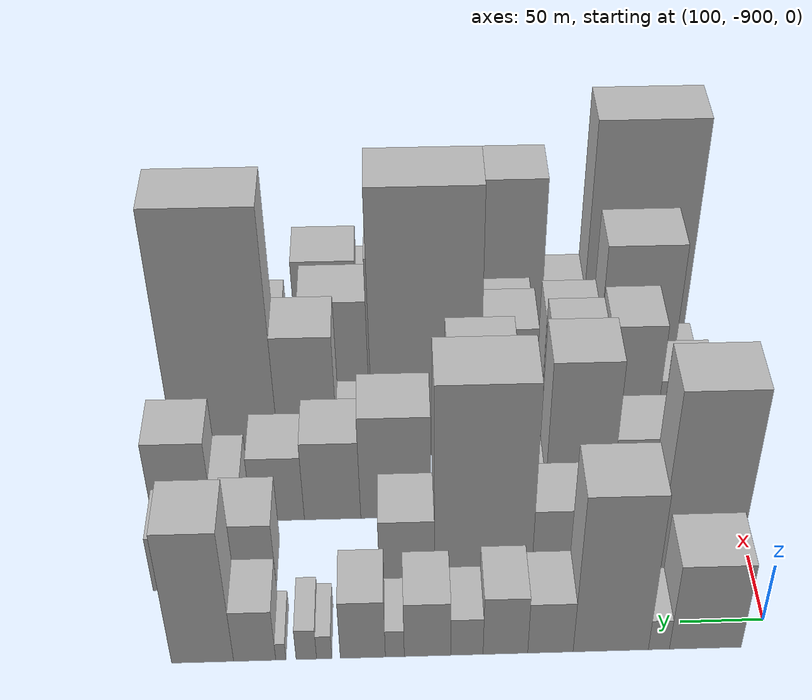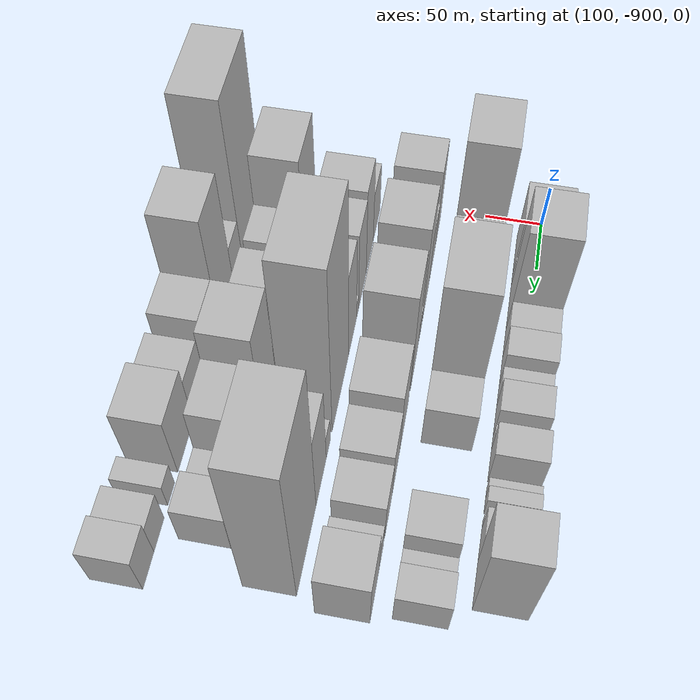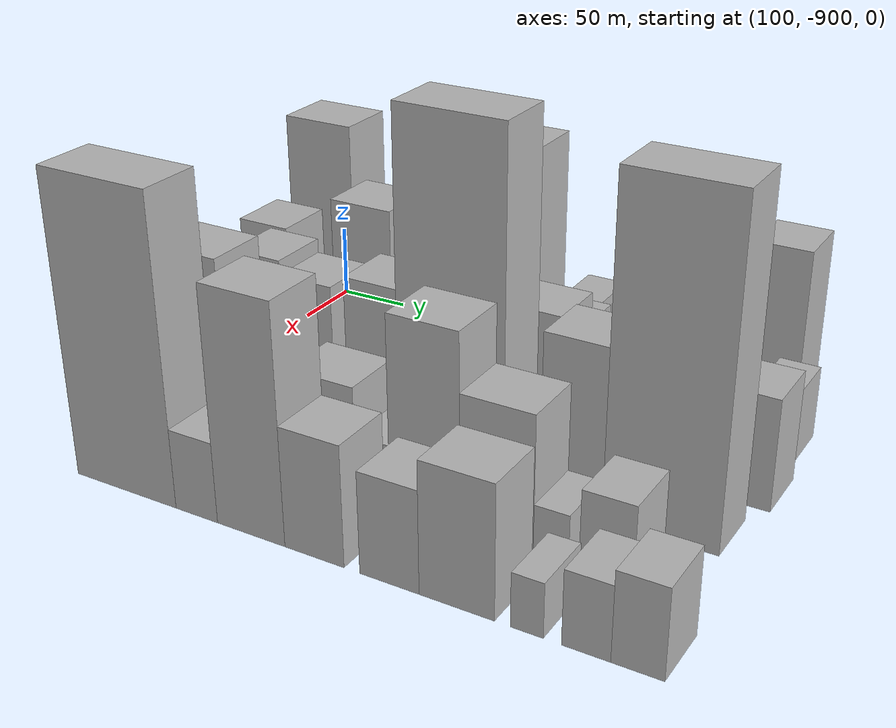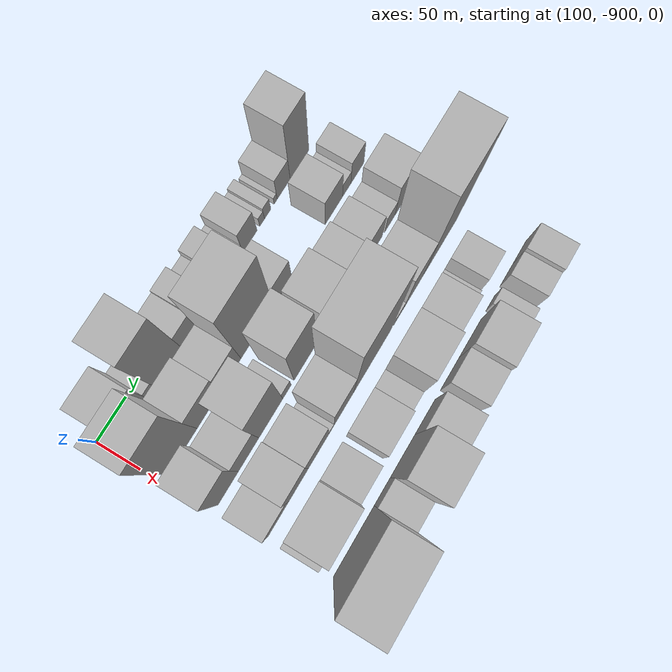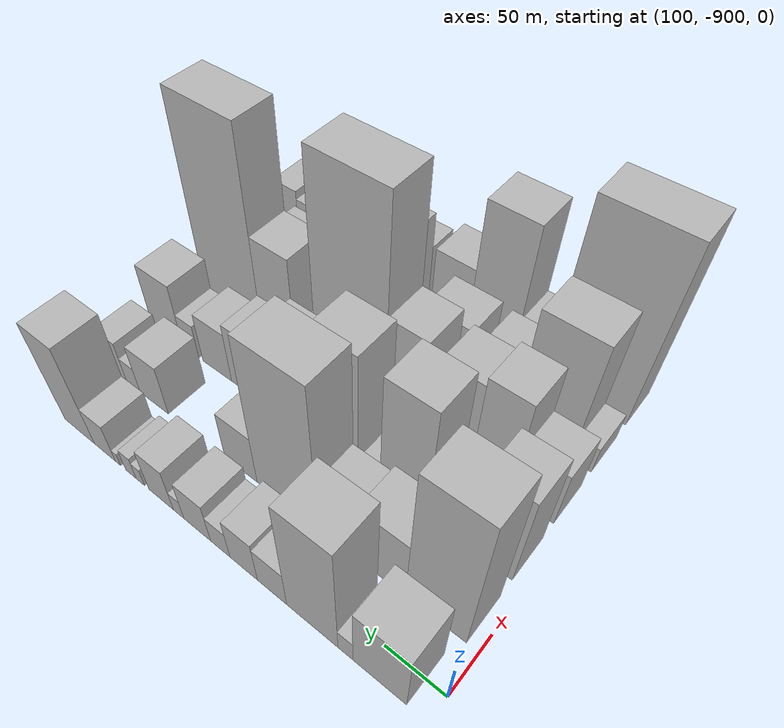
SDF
<sdf version="1.6">
 <world name="default">
  <model name="building_1">
   <static>1</static>
   <pose>100.0000 -861.5015 0 0.000000 0.000000 0.000000</pose>
   <link name="link">
    <pose>0 0 37.50 0 0 0</pose>
    <collision name="collision"><geometry><box><size>40.0000 42.9970 75.0000</size></box></geometry></collision>
    <visual name="visual">
     <cast_shadows>0</cast_shadows>
     <geometry><box><size>40.0000 42.9970 75.0000</size></box></geometry>
     <material>
      <script>
       <uri>model://HANNAS_wall/materials/scripts</uri>
       <uri>model://HANNAS_wall/materials/textures</uri>
       <name>vrc/HANNAS_wall</name>
      </script>
     </material>
    </visual>
   </link>
  </model>
  <model name="building_2">
   <static>1</static>
   <pose>100.0000 -833.7153 0 0.000000 0.000000 0.000000</pose>
   <link name="link">
    <pose>0 0 13.50 0 0 0</pose>
    <collision name="collision"><geometry><box><size>40.0000 12.5755 27.0000</size></box></geometry></collision>
    <visual name="visual">
     <cast_shadows>0</cast_shadows>
     <geometry><box><size>40.0000 12.5755 27.0000</size></box></geometry>
     <material>
      <script>
       <uri>model://HANNAS_wall/materials/scripts</uri>
       <uri>model://HANNAS_wall/materials/textures</uri>
       <name>vrc/HANNAS_wall</name>
      </script>
     </material>
    </visual>
   </link>
  </model>
  <model name="building_3">
   <static>1</static>
   <pose>100.0000 -804.9748 0 0.000000 0.000000 0.000000</pose>
   <link name="link">
    <pose>0 0 67.50 0 0 0</pose>
    <collision name="collision"><geometry><box><size>40.0000 44.9055 135.0000</size></box></geometry></collision>
    <visual name="visual">
     <cast_shadows>0</cast_shadows>
     <geometry><box><size>40.0000 44.9055 135.0000</size></box></geometry>
     <material>
      <script>
       <uri>model://HANNAS_wall/materials/scripts</uri>
       <uri>model://HANNAS_wall/materials/textures</uri>
       <name>vrc/HANNAS_wall</name>
      </script>
     </material>
    </visual>
   </link>
  </model>
  <model name="building_4">
   <static>1</static>
   <pose>100.0000 -769.0350 0 0.000000 0.000000 0.000000</pose>
   <link name="link">
    <pose>0 0 22.50 0 0 0</pose>
    <collision name="collision"><geometry><box><size>40.0000 26.9741 45.0000</size></box></geometry></collision>
    <visual name="visual">
     <cast_shadows>0</cast_shadows>
     <geometry><box><size>40.0000 26.9741 45.0000</size></box></geometry>
     <material>
      <script>
       <uri>model://HANNAS_wall/materials/scripts</uri>
       <uri>model://HANNAS_wall/materials/textures</uri>
       <name>vrc/HANNAS_wall</name>
      </script>
     </material>
    </visual>
   </link>
  </model>
  <model name="building_5">
   <static>1</static>
   <pose>100.0000 -742.2721 0 0.000000 0.000000 0.000000</pose>
   <link name="link">
    <pose>0 0 25.50 0 0 0</pose>
    <collision name="collision"><geometry><box><size>40.0000 26.5517 51.0000</size></box></geometry></collision>
    <visual name="visual">
     <cast_shadows>0</cast_shadows>
     <geometry><box><size>40.0000 26.5517 51.0000</size></box></geometry>
     <material>
      <script>
       <uri>model://HANNAS_wall/materials/scripts</uri>
       <uri>model://HANNAS_wall/materials/textures</uri>
       <name>vrc/HANNAS_wall</name>
      </script>
     </material>
    </visual>
   </link>
  </model>
  <model name="building_6">
   <static>1</static>
   <pose>100.0000 -719.4111 0 0.000000 0.000000 0.000000</pose>
   <link name="link">
    <pose>0 0 16.50 0 0 0</pose>
    <collision name="collision"><geometry><box><size>40.0000 19.1703 33.0000</size></box></geometry></collision>
    <visual name="visual">
     <cast_shadows>0</cast_shadows>
     <geometry><box><size>40.0000 19.1703 33.0000</size></box></geometry>
     <material>
      <script>
       <uri>model://HANNAS_wall/materials/scripts</uri>
       <uri>model://HANNAS_wall/materials/textures</uri>
       <name>vrc/HANNAS_wall</name>
      </script>
     </material>
    </visual>
   </link>
  </model>
  <model name="building_7">
   <static>1</static>
   <pose>100.0000 -696.0575 0 0.000000 0.000000 0.000000</pose>
   <link name="link">
    <pose>0 0 24.00 0 0 0</pose>
    <collision name="collision"><geometry><box><size>40.0000 27.5370 48.0000</size></box></geometry></collision>
    <visual name="visual">
     <cast_shadows>0</cast_shadows>
     <geometry><box><size>40.0000 27.5370 48.0000</size></box></geometry>
     <material>
      <script>
       <uri>model://HANNAS_wall/materials/scripts</uri>
       <uri>model://HANNAS_wall/materials/textures</uri>
       <name>vrc/HANNAS_wall</name>
      </script>
     </material>
    </visual>
   </link>
  </model>
  <model name="building_8">
   <static>1</static>
   <pose>100.0000 -676.7047 0 0.000000 0.000000 0.000000</pose>
   <link name="link">
    <pose>0 0 12.00 0 0 0</pose>
    <collision name="collision"><geometry><box><size>40.0000 11.1686 24.0000</size></box></geometry></collision>
    <visual name="visual">
     <cast_shadows>0</cast_shadows>
     <geometry><box><size>40.0000 11.1686 24.0000</size></box></geometry>
     <material>
      <script>
       <uri>model://HANNAS_wall/materials/scripts</uri>
       <uri>model://HANNAS_wall/materials/textures</uri>
       <name>vrc/HANNAS_wall</name>
      </script>
     </material>
    </visual>
   </link>
  </model>
  <model name="building_9">
   <static>1</static>
   <pose>100.0000 -657.8002 0 0.000000 0.000000 0.000000</pose>
   <link name="link">
    <pose>0 0 25.50 0 0 0</pose>
    <collision name="collision"><geometry><box><size>40.0000 26.6404 51.0000</size></box></geometry></collision>
    <visual name="visual">
     <cast_shadows>0</cast_shadows>
     <geometry><box><size>40.0000 26.6404 51.0000</size></box></geometry>
     <material>
      <script>
       <uri>model://HANNAS_wall/materials/scripts</uri>
       <uri>model://HANNAS_wall/materials/textures</uri>
       <name>vrc/HANNAS_wall</name>
      </script>
     </material>
    </visual>
   </link>
  </model>
  <model name="building_10">
   <static>1</static>
   <pose>100.0000 -634.9543 0 0.000000 0.000000 0.000000</pose>
   <link name="link">
    <pose>0 0 10.50 0 0 0</pose>
    <collision name="collision"><geometry><box><size>40.0000 9.0513 21.0000</size></box></geometry></collision>
    <visual name="visual">
     <cast_shadows>0</cast_shadows>
     <geometry><box><size>40.0000 9.0513 21.0000</size></box></geometry>
     <material>
      <script>
       <uri>model://HANNAS_wall/materials/scripts</uri>
       <uri>model://HANNAS_wall/materials/textures</uri>
       <name>vrc/HANNAS_wall</name>
      </script>
     </material>
    </visual>
   </link>
  </model>
  <model name="building_11">
   <static>1</static>
   <pose>100.0000 -624.3979 0 0.000000 0.000000 0.000000</pose>
   <link name="link">
    <pose>0 0 13.50 0 0 0</pose>
    <collision name="collision"><geometry><box><size>40.0000 12.0615 27.0000</size></box></geometry></collision>
    <visual name="visual">
     <cast_shadows>0</cast_shadows>
     <geometry><box><size>40.0000 12.0615 27.0000</size></box></geometry>
     <material>
      <script>
       <uri>model://HANNAS_wall/materials/scripts</uri>
       <uri>model://HANNAS_wall/materials/textures</uri>
       <name>vrc/HANNAS_wall</name>
      </script>
     </material>
    </visual>
   </link>
  </model>
  <model name="building_12">
   <static>1</static>
   <pose>100.0000 -609.3551 0 0.000000 0.000000 0.000000</pose>
   <link name="link">
    <pose>0 0 7.50 0 0 0</pose>
    <collision name="collision"><geometry><box><size>40.0000 6.0242 15.0000</size></box></geometry></collision>
    <visual name="visual">
     <cast_shadows>0</cast_shadows>
     <geometry><box><size>40.0000 6.0242 15.0000</size></box></geometry>
     <material>
      <script>
       <uri>model://HANNAS_wall/materials/scripts</uri>
       <uri>model://HANNAS_wall/materials/textures</uri>
       <name>vrc/HANNAS_wall</name>
      </script>
     </material>
    </visual>
   </link>
  </model>
  <model name="building_13">
   <static>1</static>
   <pose>100.0000 -593.9418 0 0.000000 0.000000 0.000000</pose>
   <link name="link">
    <pose>0 0 22.50 0 0 0</pose>
    <collision name="collision"><geometry><box><size>40.0000 24.8023 45.0000</size></box></geometry></collision>
    <visual name="visual">
     <cast_shadows>0</cast_shadows>
     <geometry><box><size>40.0000 24.8023 45.0000</size></box></geometry>
     <material>
      <script>
       <uri>model://HANNAS_wall/materials/scripts</uri>
       <uri>model://HANNAS_wall/materials/textures</uri>
       <name>vrc/HANNAS_wall</name>
      </script>
     </material>
    </visual>
   </link>
  </model>
  <model name="building_14">
   <static>1</static>
   <pose>100.0000 -563.2996 0 0.000000 0.000000 0.000000</pose>
   <link name="link">
    <pose>0 0 57.00 0 0 0</pose>
    <collision name="collision"><geometry><box><size>40.0000 36.4821 114.0000</size></box></geometry></collision>
    <visual name="visual">
     <cast_shadows>0</cast_shadows>
     <geometry><box><size>40.0000 36.4821 114.0000</size></box></geometry>
     <material>
      <script>
       <uri>model://HANNAS_wall/materials/scripts</uri>
       <uri>model://HANNAS_wall/materials/textures</uri>
       <name>vrc/HANNAS_wall</name>
      </script>
     </material>
    </visual>
   </link>
  </model>
  <model name="building_52">
   <static>1</static>
   <pose>155.0000 -865.0894 0 0.000000 0.000000 0.000000</pose>
   <link name="link">
    <pose>0 0 79.50 0 0 0</pose>
    <collision name="collision"><geometry><box><size>40.0000 49.8213 159.0000</size></box></geometry></collision>
    <visual name="visual">
     <cast_shadows>0</cast_shadows>
     <geometry><box><size>40.0000 49.8213 159.0000</size></box></geometry>
     <material>
      <script>
       <uri>model://HANNAS_wall/materials/scripts</uri>
       <uri>model://HANNAS_wall/materials/textures</uri>
       <name>vrc/HANNAS_wall</name>
      </script>
     </material>
    </visual>
   </link>
  </model>
  <model name="building_53">
   <static>1</static>
   <pose>155.0000 -818.9064 0 0.000000 0.000000 0.000000</pose>
   <link name="link">
    <pose>0 0 36.00 0 0 0</pose>
    <collision name="collision"><geometry><box><size>40.0000 42.5446 72.0000</size></box></geometry></collision>
    <visual name="visual">
     <cast_shadows>0</cast_shadows>
     <geometry><box><size>40.0000 42.5446 72.0000</size></box></geometry>
     <material>
      <script>
       <uri>model://HANNAS_wall/materials/scripts</uri>
       <uri>model://HANNAS_wall/materials/textures</uri>
       <name>vrc/HANNAS_wall</name>
      </script>
     </material>
    </visual>
   </link>
  </model>
  <model name="building_54">
   <static>1</static>
   <pose>155.0000 -779.8081 0 0.000000 0.000000 0.000000</pose>
   <link name="link">
    <pose>0 0 31.50 0 0 0</pose>
    <collision name="collision"><geometry><box><size>40.0000 35.6519 63.0000</size></box></geometry></collision>
    <visual name="visual">
     <cast_shadows>0</cast_shadows>
     <geometry><box><size>40.0000 35.6519 63.0000</size></box></geometry>
     <material>
      <script>
       <uri>model://HANNAS_wall/materials/scripts</uri>
       <uri>model://HANNAS_wall/materials/textures</uri>
       <name>vrc/HANNAS_wall</name>
      </script>
     </material>
    </visual>
   </link>
  </model>
  <model name="building_55">
   <static>1</static>
   <pose>155.0000 -731.9759 0 0.000000 0.000000 0.000000</pose>
   <link name="link">
    <pose>0 0 84.00 0 0 0</pose>
    <collision name="collision"><geometry><box><size>40.0000 60.0126 168.0000</size></box></geometry></collision>
    <visual name="visual">
     <cast_shadows>0</cast_shadows>
     <geometry><box><size>40.0000 60.0126 168.0000</size></box></geometry>
     <material>
      <script>
       <uri>model://HANNAS_wall/materials/scripts</uri>
       <uri>model://HANNAS_wall/materials/textures</uri>
       <name>vrc/HANNAS_wall</name>
      </script>
     </material>
    </visual>
   </link>
  </model>
  <model name="building_56">
   <static>1</static>
   <pose>155.0000 -685.0413 0 0.000000 0.000000 0.000000</pose>
   <link name="link">
    <pose>0 0 28.50 0 0 0</pose>
    <collision name="collision"><geometry><box><size>40.0000 33.8565 57.0000</size></box></geometry></collision>
    <visual name="visual">
     <cast_shadows>0</cast_shadows>
     <geometry><box><size>40.0000 33.8565 57.0000</size></box></geometry>
     <material>
      <script>
       <uri>model://HANNAS_wall/materials/scripts</uri>
       <uri>model://HANNAS_wall/materials/textures</uri>
       <name>vrc/HANNAS_wall</name>
      </script>
     </material>
    </visual>
   </link>
  </model>
  <model name="building_57">
   <static>1</static>
   <pose>155.0000 -587.5631 0 0.000000 0.000000 0.000000</pose>
   <link name="link">
    <pose>0 0 28.50 0 0 0</pose>
    <collision name="collision"><geometry><box><size>40.0000 33.7000 57.0000</size></box></geometry></collision>
    <visual name="visual">
     <cast_shadows>0</cast_shadows>
     <geometry><box><size>40.0000 33.7000 57.0000</size></box></geometry>
     <material>
      <script>
       <uri>model://HANNAS_wall/materials/scripts</uri>
       <uri>model://HANNAS_wall/materials/textures</uri>
       <name>vrc/HANNAS_wall</name>
      </script>
     </material>
    </visual>
   </link>
  </model>
  <model name="building_58">
   <static>1</static>
   <pose>155.0000 -562.4655 0 0.000000 0.000000 0.000000</pose>
   <link name="link">
    <pose>0 0 15.00 0 0 0</pose>
    <collision name="collision"><geometry><box><size>40.0000 16.4953 30.0000</size></box></geometry></collision>
    <visual name="visual">
     <cast_shadows>0</cast_shadows>
     <geometry><box><size>40.0000 16.4953 30.0000</size></box></geometry>
     <material>
      <script>
       <uri>model://HANNAS_wall/materials/scripts</uri>
       <uri>model://HANNAS_wall/materials/textures</uri>
       <name>vrc/HANNAS_wall</name>
      </script>
     </material>
    </visual>
   </link>
  </model>
  <model name="building_59">
   <static>1</static>
   <pose>155.0000 -541.3465 0 0.000000 0.000000 0.000000</pose>
   <link name="link">
    <pose>0 0 24.00 0 0 0</pose>
    <collision name="collision"><geometry><box><size>40.0000 25.7426 48.0000</size></box></geometry></collision>
    <visual name="visual">
     <cast_shadows>0</cast_shadows>
     <geometry><box><size>40.0000 25.7426 48.0000</size></box></geometry>
     <material>
      <script>
       <uri>model://HANNAS_wall/materials/scripts</uri>
       <uri>model://HANNAS_wall/materials/textures</uri>
       <name>vrc/HANNAS_wall</name>
      </script>
     </material>
    </visual>
   </link>
  </model>
  <model name="building_101">
   <static>1</static>
   <pose>210.0000 -871.7727 0 0.000000 0.000000 0.000000</pose>
   <link name="link">
    <pose>0 0 52.50 0 0 0</pose>
    <collision name="collision"><geometry><box><size>40.0000 36.4546 105.0000</size></box></geometry></collision>
    <visual name="visual">
     <cast_shadows>0</cast_shadows>
     <geometry><box><size>40.0000 36.4546 105.0000</size></box></geometry>
     <material>
      <script>
       <uri>model://HANNAS_wall/materials/scripts</uri>
       <uri>model://HANNAS_wall/materials/textures</uri>
       <name>vrc/HANNAS_wall</name>
      </script>
     </material>
    </visual>
   </link>
  </model>
  <model name="building_102">
   <static>1</static>
   <pose>210.0000 -835.5904 0 0.000000 0.000000 0.000000</pose>
   <link name="link">
    <pose>0 0 33.00 0 0 0</pose>
    <collision name="collision"><geometry><box><size>40.0000 35.9101 66.0000</size></box></geometry></collision>
    <visual name="visual">
     <cast_shadows>0</cast_shadows>
     <geometry><box><size>40.0000 35.9101 66.0000</size></box></geometry>
     <material>
      <script>
       <uri>model://HANNAS_wall/materials/scripts</uri>
       <uri>model://HANNAS_wall/materials/textures</uri>
       <name>vrc/HANNAS_wall</name>
      </script>
     </material>
    </visual>
   </link>
  </model>
  <model name="building_103">
   <static>1</static>
   <pose>210.0000 -796.1075 0 0.000000 0.000000 0.000000</pose>
   <link name="link">
    <pose>0 0 66.00 0 0 0</pose>
    <collision name="collision"><geometry><box><size>40.0000 43.0557 132.0000</size></box></geometry></collision>
    <visual name="visual">
     <cast_shadows>0</cast_shadows>
     <geometry><box><size>40.0000 43.0557 132.0000</size></box></geometry>
     <material>
      <script>
       <uri>model://HANNAS_wall/materials/scripts</uri>
       <uri>model://HANNAS_wall/materials/textures</uri>
       <name>vrc/HANNAS_wall</name>
      </script>
     </material>
    </visual>
   </link>
  </model>
  <model name="building_104">
   <static>1</static>
   <pose>210.0000 -766.7831 0 0.000000 0.000000 0.000000</pose>
   <link name="link">
    <pose>0 0 15.00 0 0 0</pose>
    <collision name="collision"><geometry><box><size>40.0000 15.5932 30.0000</size></box></geometry></collision>
    <visual name="visual">
     <cast_shadows>0</cast_shadows>
     <geometry><box><size>40.0000 15.5932 30.0000</size></box></geometry>
     <material>
      <script>
       <uri>model://HANNAS_wall/materials/scripts</uri>
       <uri>model://HANNAS_wall/materials/textures</uri>
       <name>vrc/HANNAS_wall</name>
      </script>
     </material>
    </visual>
   </link>
  </model>
  <model name="building_105">
   <static>1</static>
   <pose>210.0000 -732.7394 0 0.000000 0.000000 0.000000</pose>
   <link name="link">
    <pose>0 0 67.50 0 0 0</pose>
    <collision name="collision"><geometry><box><size>40.0000 42.4941 135.0000</size></box></geometry></collision>
    <visual name="visual">
     <cast_shadows>0</cast_shadows>
     <geometry><box><size>40.0000 42.4941 135.0000</size></box></geometry>
     <material>
      <script>
       <uri>model://HANNAS_wall/materials/scripts</uri>
       <uri>model://HANNAS_wall/materials/textures</uri>
       <name>vrc/HANNAS_wall</name>
      </script>
     </material>
    </visual>
   </link>
  </model>
  <model name="building_106">
   <static>1</static>
   <pose>210.0000 -678.8380 0 0.000000 0.000000 0.000000</pose>
   <link name="link">
    <pose>0 0 45.00 0 0 0</pose>
    <collision name="collision"><geometry><box><size>40.0000 45.3088 90.0000</size></box></geometry></collision>
    <visual name="visual">
     <cast_shadows>0</cast_shadows>
     <geometry><box><size>40.0000 45.3088 90.0000</size></box></geometry>
     <material>
      <script>
       <uri>model://HANNAS_wall/materials/scripts</uri>
       <uri>model://HANNAS_wall/materials/textures</uri>
       <name>vrc/HANNAS_wall</name>
      </script>
     </material>
    </visual>
   </link>
  </model>
  <model name="building_107">
   <static>1</static>
   <pose>210.0000 -638.0122 0 0.000000 0.000000 0.000000</pose>
   <link name="link">
    <pose>0 0 34.50 0 0 0</pose>
    <collision name="collision"><geometry><box><size>40.0000 36.3427 69.0000</size></box></geometry></collision>
    <visual name="visual">
     <cast_shadows>0</cast_shadows>
     <geometry><box><size>40.0000 36.3427 69.0000</size></box></geometry>
     <material>
      <script>
       <uri>model://HANNAS_wall/materials/scripts</uri>
       <uri>model://HANNAS_wall/materials/textures</uri>
       <name>vrc/HANNAS_wall</name>
      </script>
     </material>
    </visual>
   </link>
  </model>
  <model name="building_108">
   <static>1</static>
   <pose>210.0000 -602.9122 0 0.000000 0.000000 0.000000</pose>
   <link name="link">
    <pose>0 0 28.50 0 0 0</pose>
    <collision name="collision"><geometry><box><size>40.0000 33.8573 57.0000</size></box></geometry></collision>
    <visual name="visual">
     <cast_shadows>0</cast_shadows>
     <geometry><box><size>40.0000 33.8573 57.0000</size></box></geometry>
     <material>
      <script>
       <uri>model://HANNAS_wall/materials/scripts</uri>
       <uri>model://HANNAS_wall/materials/textures</uri>
       <name>vrc/HANNAS_wall</name>
      </script>
     </material>
    </visual>
   </link>
  </model>
  <model name="building_109">
   <static>1</static>
   <pose>210.0000 -571.1260 0 0.000000 0.000000 0.000000</pose>
   <link name="link">
    <pose>0 0 19.50 0 0 0</pose>
    <collision name="collision"><geometry><box><size>40.0000 19.7151 39.0000</size></box></geometry></collision>
    <visual name="visual">
     <cast_shadows>0</cast_shadows>
     <geometry><box><size>40.0000 19.7151 39.0000</size></box></geometry>
     <material>
      <script>
       <uri>model://HANNAS_wall/materials/scripts</uri>
       <uri>model://HANNAS_wall/materials/textures</uri>
       <name>vrc/HANNAS_wall</name>
      </script>
     </material>
    </visual>
   </link>
  </model>
  <model name="building_110">
   <static>1</static>
   <pose>210.0000 -541.9757 0 0.000000 0.000000 0.000000</pose>
   <link name="link">
    <pose>0 0 36.00 0 0 0</pose>
    <collision name="collision"><geometry><box><size>40.0000 38.5856 72.0000</size></box></geometry></collision>
    <visual name="visual">
     <cast_shadows>0</cast_shadows>
     <geometry><box><size>40.0000 38.5856 72.0000</size></box></geometry>
     <material>
      <script>
       <uri>model://HANNAS_wall/materials/scripts</uri>
       <uri>model://HANNAS_wall/materials/textures</uri>
       <name>vrc/HANNAS_wall</name>
      </script>
     </material>
    </visual>
   </link>
  </model>
  <model name="building_154">
   <static>1</static>
   <pose>265.0000 -871.6681 0 0.000000 0.000000 0.000000</pose>
   <link name="link">
    <pose>0 0 31.50 0 0 0</pose>
    <collision name="collision"><geometry><box><size>40.0000 36.6637 63.0000</size></box></geometry></collision>
    <visual name="visual">
     <cast_shadows>0</cast_shadows>
     <geometry><box><size>40.0000 36.6637 63.0000</size></box></geometry>
     <material>
      <script>
       <uri>model://HANNAS_wall/materials/scripts</uri>
       <uri>model://HANNAS_wall/materials/textures</uri>
       <name>vrc/HANNAS_wall</name>
      </script>
     </material>
    </visual>
   </link>
  </model>
  <model name="building_155">
   <static>1</static>
   <pose>265.0000 -835.5537 0 0.000000 0.000000 0.000000</pose>
   <link name="link">
    <pose>0 0 55.50 0 0 0</pose>
    <collision name="collision"><geometry><box><size>40.0000 35.5651 111.0000</size></box></geometry></collision>
    <visual name="visual">
     <cast_shadows>0</cast_shadows>
     <geometry><box><size>40.0000 35.5651 111.0000</size></box></geometry>
     <material>
      <script>
       <uri>model://HANNAS_wall/materials/scripts</uri>
       <uri>model://HANNAS_wall/materials/textures</uri>
       <name>vrc/HANNAS_wall</name>
      </script>
     </material>
    </visual>
   </link>
  </model>
  <model name="building_156">
   <static>1</static>
   <pose>265.0000 -799.4669 0 0.000000 0.000000 0.000000</pose>
   <link name="link">
    <pose>0 0 51.00 0 0 0</pose>
    <collision name="collision"><geometry><box><size>40.0000 36.6086 102.0000</size></box></geometry></collision>
    <visual name="visual">
     <cast_shadows>0</cast_shadows>
     <geometry><box><size>40.0000 36.6086 102.0000</size></box></geometry>
     <material>
      <script>
       <uri>model://HANNAS_wall/materials/scripts</uri>
       <uri>model://HANNAS_wall/materials/textures</uri>
       <name>vrc/HANNAS_wall</name>
      </script>
     </material>
    </visual>
   </link>
  </model>
  <model name="building_157">
   <static>1</static>
   <pose>265.0000 -776.3651 0 0.000000 0.000000 0.000000</pose>
   <link name="link">
    <pose>0 0 10.50 0 0 0</pose>
    <collision name="collision"><geometry><box><size>40.0000 9.5949 21.0000</size></box></geometry></collision>
    <visual name="visual">
     <cast_shadows>0</cast_shadows>
     <geometry><box><size>40.0000 9.5949 21.0000</size></box></geometry>
     <material>
      <script>
       <uri>model://HANNAS_wall/materials/scripts</uri>
       <uri>model://HANNAS_wall/materials/textures</uri>
       <name>vrc/HANNAS_wall</name>
      </script>
     </material>
    </visual>
   </link>
  </model>
  <model name="building_158">
   <static>1</static>
   <pose>265.0000 -753.6155 0 0.000000 0.000000 0.000000</pose>
   <link name="link">
    <pose>0 0 55.50 0 0 0</pose>
    <collision name="collision"><geometry><box><size>40.0000 35.9044 111.0000</size></box></geometry></collision>
    <visual name="visual">
     <cast_shadows>0</cast_shadows>
     <geometry><box><size>40.0000 35.9044 111.0000</size></box></geometry>
     <material>
      <script>
       <uri>model://HANNAS_wall/materials/scripts</uri>
       <uri>model://HANNAS_wall/materials/textures</uri>
       <name>vrc/HANNAS_wall</name>
      </script>
     </material>
    </visual>
   </link>
  </model>
  <model name="building_159">
   <static>1</static>
   <pose>265.0000 -700.0100 0 0.000000 0.000000 0.000000</pose>
   <link name="link">
    <pose>0 0 111.00 0 0 0</pose>
    <collision name="collision"><geometry><box><size>40.0000 71.3065 222.0000</size></box></geometry></collision>
    <visual name="visual">
     <cast_shadows>0</cast_shadows>
     <geometry><box><size>40.0000 71.3065 222.0000</size></box></geometry>
     <material>
      <script>
       <uri>model://HANNAS_wall/materials/scripts</uri>
       <uri>model://HANNAS_wall/materials/textures</uri>
       <name>vrc/HANNAS_wall</name>
      </script>
     </material>
    </visual>
   </link>
  </model>
  <model name="building_160">
   <static>1</static>
   <pose>265.0000 -649.5622 0 0.000000 0.000000 0.000000</pose>
   <link name="link">
    <pose>0 0 16.50 0 0 0</pose>
    <collision name="collision"><geometry><box><size>40.0000 17.5892 33.0000</size></box></geometry></collision>
    <visual name="visual">
     <cast_shadows>0</cast_shadows>
     <geometry><box><size>40.0000 17.5892 33.0000</size></box></geometry>
     <material>
      <script>
       <uri>model://HANNAS_wall/materials/scripts</uri>
       <uri>model://HANNAS_wall/materials/textures</uri>
       <name>vrc/HANNAS_wall</name>
      </script>
     </material>
    </visual>
   </link>
  </model>
  <model name="building_161">
   <static>1</static>
   <pose>265.0000 -621.1177 0 0.000000 0.000000 0.000000</pose>
   <link name="link">
    <pose>0 0 54.00 0 0 0</pose>
    <collision name="collision"><geometry><box><size>40.0000 39.2999 108.0000</size></box></geometry></collision>
    <visual name="visual">
     <cast_shadows>0</cast_shadows>
     <geometry><box><size>40.0000 39.2999 108.0000</size></box></geometry>
     <material>
      <script>
       <uri>model://HANNAS_wall/materials/scripts</uri>
       <uri>model://HANNAS_wall/materials/textures</uri>
       <name>vrc/HANNAS_wall</name>
      </script>
     </material>
    </visual>
   </link>
  </model>
  <model name="building_162">
   <static>1</static>
   <pose>265.0000 -566.6998 0 0.000000 0.000000 0.000000</pose>
   <link name="link">
    <pose>0 0 105.00 0 0 0</pose>
    <collision name="collision"><geometry><box><size>40.0000 69.5359 210.0000</size></box></geometry></collision>
    <visual name="visual">
     <cast_shadows>0</cast_shadows>
     <geometry><box><size>40.0000 69.5359 210.0000</size></box></geometry>
     <material>
      <script>
       <uri>model://HANNAS_wall/materials/scripts</uri>
       <uri>model://HANNAS_wall/materials/textures</uri>
       <name>vrc/HANNAS_wall</name>
      </script>
     </material>
    </visual>
   </link>
  </model>
  <model name="building_200">
   <static>1</static>
   <pose>320.0000 -881.1974 0 0.000000 0.000000 0.000000</pose>
   <link name="link">
    <pose>0 0 15.00 0 0 0</pose>
    <collision name="collision"><geometry><box><size>40.0000 17.6052 30.0000</size></box></geometry></collision>
    <visual name="visual">
     <cast_shadows>0</cast_shadows>
     <geometry><box><size>40.0000 17.6052 30.0000</size></box></geometry>
     <material>
      <script>
       <uri>model://HANNAS_wall/materials/scripts</uri>
       <uri>model://HANNAS_wall/materials/textures</uri>
       <name>vrc/HANNAS_wall</name>
      </script>
     </material>
    </visual>
   </link>
  </model>
  <model name="building_201">
   <static>1</static>
   <pose>320.0000 -846.2011 0 0.000000 0.000000 0.000000</pose>
   <link name="link">
    <pose>0 0 66.00 0 0 0</pose>
    <collision name="collision"><geometry><box><size>40.0000 52.3874 132.0000</size></box></geometry></collision>
    <visual name="visual">
     <cast_shadows>0</cast_shadows>
     <geometry><box><size>40.0000 52.3874 132.0000</size></box></geometry>
     <material>
      <script>
       <uri>model://HANNAS_wall/materials/scripts</uri>
       <uri>model://HANNAS_wall/materials/textures</uri>
       <name>vrc/HANNAS_wall</name>
      </script>
     </material>
    </visual>
   </link>
  </model>
  <model name="building_202">
   <static>1</static>
   <pose>320.0000 -801.4850 0 0.000000 0.000000 0.000000</pose>
   <link name="link">
    <pose>0 0 36.00 0 0 0</pose>
    <collision name="collision"><geometry><box><size>40.0000 37.0447 72.0000</size></box></geometry></collision>
    <visual name="visual">
     <cast_shadows>0</cast_shadows>
     <geometry><box><size>40.0000 37.0447 72.0000</size></box></geometry>
     <material>
      <script>
       <uri>model://HANNAS_wall/materials/scripts</uri>
       <uri>model://HANNAS_wall/materials/textures</uri>
       <name>vrc/HANNAS_wall</name>
      </script>
     </material>
    </visual>
   </link>
  </model>
  <model name="building_203">
   <static>1</static>
   <pose>320.0000 -751.6936 0 0.000000 0.000000 0.000000</pose>
   <link name="link">
    <pose>0 0 37.50 0 0 0</pose>
    <collision name="collision"><geometry><box><size>40.0000 44.5381 75.0000</size></box></geometry></collision>
    <visual name="visual">
     <cast_shadows>0</cast_shadows>
     <geometry><box><size>40.0000 44.5381 75.0000</size></box></geometry>
     <material>
      <script>
       <uri>model://HANNAS_wall/materials/scripts</uri>
       <uri>model://HANNAS_wall/materials/textures</uri>
       <name>vrc/HANNAS_wall</name>
      </script>
     </material>
    </visual>
   </link>
  </model>
  <model name="building_204">
   <static>1</static>
   <pose>320.0000 -718.0246 0 0.000000 0.000000 0.000000</pose>
   <link name="link">
    <pose>0 0 22.50 0 0 0</pose>
    <collision name="collision"><geometry><box><size>40.0000 22.8000 45.0000</size></box></geometry></collision>
    <visual name="visual">
     <cast_shadows>0</cast_shadows>
     <geometry><box><size>40.0000 22.8000 45.0000</size></box></geometry>
     <material>
      <script>
       <uri>model://HANNAS_wall/materials/scripts</uri>
       <uri>model://HANNAS_wall/materials/textures</uri>
       <name>vrc/HANNAS_wall</name>
      </script>
     </material>
    </visual>
   </link>
  </model>
  <model name="building_205">
   <static>1</static>
   <pose>320.0000 -684.0880 0 0.000000 0.000000 0.000000</pose>
   <link name="link">
    <pose>0 0 63.00 0 0 0</pose>
    <collision name="collision"><geometry><box><size>40.0000 45.0731 126.0000</size></box></geometry></collision>
    <visual name="visual">
     <cast_shadows>0</cast_shadows>
     <geometry><box><size>40.0000 45.0731 126.0000</size></box></geometry>
     <material>
      <script>
       <uri>model://HANNAS_wall/materials/scripts</uri>
       <uri>model://HANNAS_wall/materials/textures</uri>
       <name>vrc/HANNAS_wall</name>
      </script>
     </material>
    </visual>
   </link>
  </model>
  <model name="building_206">
   <static>1</static>
   <pose>320.0000 -638.8378 0 0.000000 0.000000 0.000000</pose>
   <link name="link">
    <pose>0 0 45.00 0 0 0</pose>
    <collision name="collision"><geometry><box><size>40.0000 45.4272 90.0000</size></box></geometry></collision>
    <visual name="visual">
     <cast_shadows>0</cast_shadows>
     <geometry><box><size>40.0000 45.4272 90.0000</size></box></geometry>
     <material>
      <script>
       <uri>model://HANNAS_wall/materials/scripts</uri>
       <uri>model://HANNAS_wall/materials/textures</uri>
       <name>vrc/HANNAS_wall</name>
      </script>
     </material>
    </visual>
   </link>
  </model>
  <model name="building_207">
   <static>1</static>
   <pose>320.0000 -605.6070 0 0.000000 0.000000 0.000000</pose>
   <link name="link">
    <pose>0 0 18.00 0 0 0</pose>
    <collision name="collision"><geometry><box><size>40.0000 21.0345 36.0000</size></box></geometry></collision>
    <visual name="visual">
     <cast_shadows>0</cast_shadows>
     <geometry><box><size>40.0000 21.0345 36.0000</size></box></geometry>
     <material>
      <script>
       <uri>model://HANNAS_wall/materials/scripts</uri>
       <uri>model://HANNAS_wall/materials/textures</uri>
       <name>vrc/HANNAS_wall</name>
      </script>
     </material>
    </visual>
   </link>
  </model>
  <model name="building_208">
   <static>1</static>
   <pose>320.0000 -573.4052 0 0.000000 0.000000 0.000000</pose>
   <link name="link">
    <pose>0 0 27.00 0 0 0</pose>
    <collision name="collision"><geometry><box><size>40.0000 31.3691 54.0000</size></box></geometry></collision>
    <visual name="visual">
     <cast_shadows>0</cast_shadows>
     <geometry><box><size>40.0000 31.3691 54.0000</size></box></geometry>
     <material>
      <script>
       <uri>model://HANNAS_wall/materials/scripts</uri>
       <uri>model://HANNAS_wall/materials/textures</uri>
       <name>vrc/HANNAS_wall</name>
      </script>
     </material>
    </visual>
   </link>
  </model>
  <model name="building_251">
   <static>1</static>
   <pose>375.0000 -852.7993 0 0.000000 0.000000 0.000000</pose>
   <link name="link">
    <pose>0 0 96.00 0 0 0</pose>
    <collision name="collision"><geometry><box><size>40.0000 74.4014 192.0000</size></box></geometry></collision>
    <visual name="visual">
     <cast_shadows>0</cast_shadows>
     <geometry><box><size>40.0000 74.4014 192.0000</size></box></geometry>
     <material>
      <script>
       <uri>model://HANNAS_wall/materials/scripts</uri>
       <uri>model://HANNAS_wall/materials/textures</uri>
       <name>vrc/HANNAS_wall</name>
      </script>
     </material>
    </visual>
   </link>
  </model>
  <model name="building_252">
   <static>1</static>
   <pose>375.0000 -800.6626 0 0.000000 0.000000 0.000000</pose>
   <link name="link">
    <pose>0 0 25.50 0 0 0</pose>
    <collision name="collision"><geometry><box><size>40.0000 29.8720 51.0000</size></box></geometry></collision>
    <visual name="visual">
     <cast_shadows>0</cast_shadows>
     <geometry><box><size>40.0000 29.8720 51.0000</size></box></geometry>
     <material>
      <script>
       <uri>model://HANNAS_wall/materials/scripts</uri>
       <uri>model://HANNAS_wall/materials/textures</uri>
       <name>vrc/HANNAS_wall</name>
      </script>
     </material>
    </visual>
   </link>
  </model>
  <model name="building_253">
   <static>1</static>
   <pose>375.0000 -762.4849 0 0.000000 0.000000 0.000000</pose>
   <link name="link">
    <pose>0 0 73.50 0 0 0</pose>
    <collision name="collision"><geometry><box><size>40.0000 46.4835 147.0000</size></box></geometry></collision>
    <visual name="visual">
     <cast_shadows>0</cast_shadows>
     <geometry><box><size>40.0000 46.4835 147.0000</size></box></geometry>
     <material>
      <script>
       <uri>model://HANNAS_wall/materials/scripts</uri>
       <uri>model://HANNAS_wall/materials/textures</uri>
       <name>vrc/HANNAS_wall</name>
      </script>
     </material>
    </visual>
   </link>
  </model>
  <model name="building_254">
   <static>1</static>
   <pose>375.0000 -719.8265 0 0.000000 0.000000 0.000000</pose>
   <link name="link">
    <pose>0 0 37.50 0 0 0</pose>
    <collision name="collision"><geometry><box><size>40.0000 38.8334 75.0000</size></box></geometry></collision>
    <visual name="visual">
     <cast_shadows>0</cast_shadows>
     <geometry><box><size>40.0000 38.8334 75.0000</size></box></geometry>
     <material>
      <script>
       <uri>model://HANNAS_wall/materials/scripts</uri>
       <uri>model://HANNAS_wall/materials/textures</uri>
       <name>vrc/HANNAS_wall</name>
      </script>
     </material>
    </visual>
   </link>
  </model>
  <model name="building_255">
   <static>1</static>
   <pose>375.0000 -672.0044 0 0.000000 0.000000 0.000000</pose>
   <link name="link">
    <pose>0 0 31.50 0 0 0</pose>
    <collision name="collision"><geometry><box><size>40.0000 36.8106 63.0000</size></box></geometry></collision>
    <visual name="visual">
     <cast_shadows>0</cast_shadows>
     <geometry><box><size>40.0000 36.8106 63.0000</size></box></geometry>
     <material>
      <script>
       <uri>model://HANNAS_wall/materials/scripts</uri>
       <uri>model://HANNAS_wall/materials/textures</uri>
       <name>vrc/HANNAS_wall</name>
      </script>
     </material>
    </visual>
   </link>
  </model>
  <model name="building_256">
   <static>1</static>
   <pose>375.0000 -631.3004 0 0.000000 0.000000 0.000000</pose>
   <link name="link">
    <pose>0 0 40.50 0 0 0</pose>
    <collision name="collision"><geometry><box><size>40.0000 44.5973 81.0000</size></box></geometry></collision>
    <visual name="visual">
     <cast_shadows>0</cast_shadows>
     <geometry><box><size>40.0000 44.5973 81.0000</size></box></geometry>
     <material>
      <script>
       <uri>model://HANNAS_wall/materials/scripts</uri>
       <uri>model://HANNAS_wall/materials/textures</uri>
       <name>vrc/HANNAS_wall</name>
      </script>
     </material>
    </visual>
   </link>
  </model>
  <model name="building_257">
   <static>1</static>
   <pose>375.0000 -590.7053 0 0.000000 0.000000 0.000000</pose>
   <link name="link">
    <pose>0 0 16.50 0 0 0</pose>
    <collision name="collision"><geometry><box><size>40.0000 18.5930 33.0000</size></box></geometry></collision>
    <visual name="visual">
     <cast_shadows>0</cast_shadows>
     <geometry><box><size>40.0000 18.5930 33.0000</size></box></geometry>
     <material>
      <script>
       <uri>model://HANNAS_wall/materials/scripts</uri>
       <uri>model://HANNAS_wall/materials/textures</uri>
       <name>vrc/HANNAS_wall</name>
      </script>
     </material>
    </visual>
   </link>
  </model>
  <model name="building_258">
   <static>1</static>
   <pose>375.0000 -558.1317 0 0.000000 0.000000 0.000000</pose>
   <link name="link">
    <pose>0 0 22.50 0 0 0</pose>
    <collision name="collision"><geometry><box><size>40.0000 26.5541 45.0000</size></box></geometry></collision>
    <visual name="visual">
     <cast_shadows>0</cast_shadows>
     <geometry><box><size>40.0000 26.5541 45.0000</size></box></geometry>
     <material>
      <script>
       <uri>model://HANNAS_wall/materials/scripts</uri>
       <uri>model://HANNAS_wall/materials/textures</uri>
       <name>vrc/HANNAS_wall</name>
      </script>
     </material>
    </visual>
   </link>
  </model>
  <model name="building_259">
   <static>1</static>
   <pose>375.0000 -530.6957 0 0.000000 0.000000 0.000000</pose>
   <link name="link">
    <pose>0 0 27.00 0 0 0</pose>
    <collision name="collision"><geometry><box><size>40.0000 28.3178 54.0000</size></box></geometry></collision>
    <visual name="visual">
     <cast_shadows>0</cast_shadows>
     <geometry><box><size>40.0000 28.3178 54.0000</size></box></geometry>
     <material>
      <script>
       <uri>model://HANNAS_wall/materials/scripts</uri>
       <uri>model://HANNAS_wall/materials/textures</uri>
       <name>vrc/HANNAS_wall</name>
      </script>
     </material>
    </visual>
   </link>
  </model>
 </world>
</sdf>
